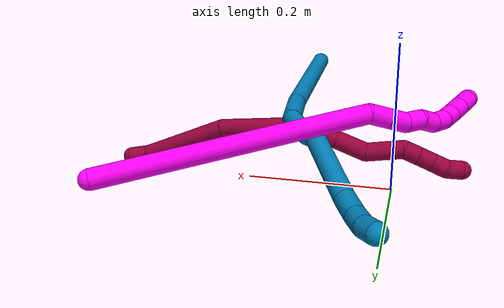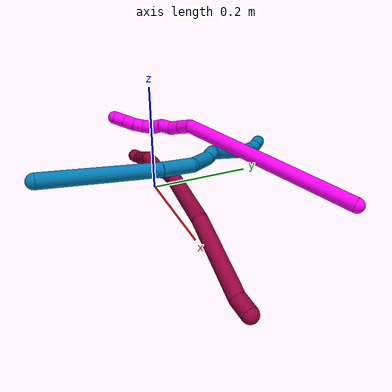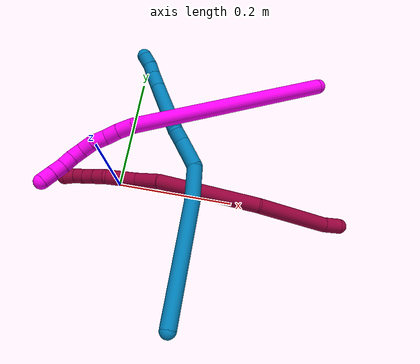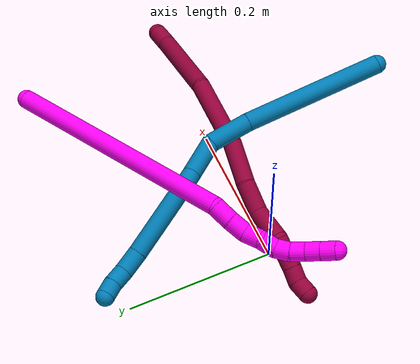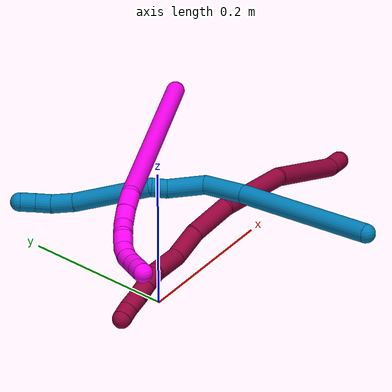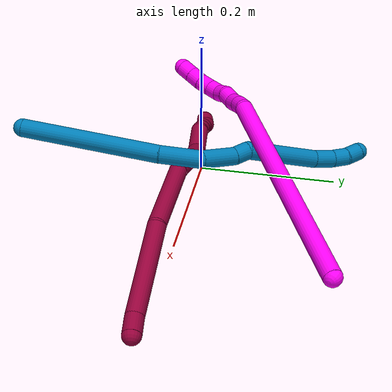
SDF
<sdf version="1.7">
 <world name="default">
  <model name="8">
   <static>0</static>
   <link name="8">
    <collision name="collision-cylinder-e_1_1_4">
     <pose>-0.002851 0.000506 -0.013476 -3.10403 -0.208324 2.78604</pose>
     <geometry><cylinder><radius>0.0125</radius><length>0.027567</length></cylinder></geometry>
     <surface>
      <friction><ode><mu>1.16</mu><mu2>1.16</mu2><slip1>0</slip1><slip2>0</slip2></ode></friction>
      <contact><ode><kp>1e+06</kp><kd>1</kd><max_vel>0</max_vel><min_depth>0.001</min_depth></ode></contact>
     </surface>
    </collision>
    <visual name="visual-cylinder-e_1_1_4">
     <pose>-0.002851 0.000506 -0.013476 -3.10403 -0.208324 2.78604</pose>
     <geometry><cylinder><radius>0.0125</radius><length>0.027567</length></cylinder></geometry>
     <material><ambient>0.584314 0 0.227451 1</ambient></material>
    </visual>
    <collision name="collision-cylinder-e_2_4_5">
     <pose>-0.00776 -0.007884 -0.090834 3.00322 -0.031911 -0.452633</pose>
     <geometry><cylinder><radius>0.0125</radius><length>0.129062</length></cylinder></geometry>
     <surface>
      <friction><ode><mu>1.16</mu><mu2>1.16</mu2><slip1>0</slip1><slip2>0</slip2></ode></friction>
      <contact><ode><kp>1e+06</kp><kd>1</kd><max_vel>0</max_vel><min_depth>0.001</min_depth></ode></contact>
     </surface>
    </collision>
    <visual name="visual-cylinder-e_2_4_5">
     <pose>-0.00776 -0.007884 -0.090834 3.00322 -0.031911 -0.452633</pose>
     <geometry><cylinder><radius>0.0125</radius><length>0.129062</length></cylinder></geometry>
     <material><ambient>0.584314 0 0.227451 1</ambient></material>
    </visual>
    <collision name="collision-cylinder-e_3_5_6">
     <pose>-0.026946 -0.021815 -0.206843 3.04532 -0.316061 -2.55445</pose>
     <geometry><cylinder><radius>0.0125</radius><length>0.110199</length></cylinder></geometry>
     <surface>
      <friction><ode><mu>1.16</mu><mu2>1.16</mu2><slip1>0</slip1><slip2>0</slip2></ode></friction>
      <contact><ode><kp>1e+06</kp><kd>1</kd><max_vel>0</max_vel><min_depth>0.001</min_depth></ode></contact>
     </surface>
    </collision>
    <visual name="visual-cylinder-e_3_5_6">
     <pose>-0.026946 -0.021815 -0.206843 3.04532 -0.316061 -2.55445</pose>
     <geometry><cylinder><radius>0.0125</radius><length>0.110199</length></cylinder></geometry>
     <material><ambient>0.584314 0 0.227451 1</ambient></material>
    </visual>
    <collision name="collision-cylinder-e_4_6_7">
     <pose>-0.061828 -0.02912 -0.282216 3.04418 -0.650029 -2.85426</pose>
     <geometry><cylinder><radius>0.0125</radius><length>0.058678</length></cylinder></geometry>
     <surface>
      <friction><ode><mu>1.16</mu><mu2>1.16</mu2><slip1>0</slip1><slip2>0</slip2></ode></friction>
      <contact><ode><kp>1e+06</kp><kd>1</kd><max_vel>0</max_vel><min_depth>0.001</min_depth></ode></contact>
     </surface>
    </collision>
    <visual name="visual-cylinder-e_4_6_7">
     <pose>-0.061828 -0.02912 -0.282216 3.04418 -0.650029 -2.85426</pose>
     <geometry><cylinder><radius>0.0125</radius><length>0.058678</length></cylinder></geometry>
     <material><ambient>0.584314 0 0.227451 1</ambient></material>
    </visual>
    <collision name="collision-cylinder-e_5_7_8">
     <pose>-0.093988 -0.029586 -0.320971 -3.02567 -0.745073 2.84677</pose>
     <geometry><cylinder><radius>0.0125</radius><length>0.042487</length></cylinder></geometry>
     <surface>
      <friction><ode><mu>1.16</mu><mu2>1.16</mu2><slip1>0</slip1><slip2>0</slip2></ode></friction>
      <contact><ode><kp>1e+06</kp><kd>1</kd><max_vel>0</max_vel><min_depth>0.001</min_depth></ode></contact>
     </surface>
    </collision>
    <visual name="visual-cylinder-e_5_7_8">
     <pose>-0.093988 -0.029586 -0.320971 -3.02567 -0.745073 2.84677</pose>
     <geometry><cylinder><radius>0.0125</radius><length>0.042487</length></cylinder></geometry>
     <material><ambient>0.584314 0 0.227451 1</ambient></material>
    </visual>
    <collision name="collision-cylinder-e_6_8_9">
     <pose>-0.114902 -0.026985 -0.360812 -3.10892 -0.261303 2.89422</pose>
     <geometry><cylinder><radius>0.0125</radius><length>0.050398</length></cylinder></geometry>
     <surface>
      <friction><ode><mu>1.16</mu><mu2>1.16</mu2><slip1>0</slip1><slip2>0</slip2></ode></friction>
      <contact><ode><kp>1e+06</kp><kd>1</kd><max_vel>0</max_vel><min_depth>0.001</min_depth></ode></contact>
     </surface>
    </collision>
    <visual name="visual-cylinder-e_6_8_9">
     <pose>-0.114902 -0.026985 -0.360812 -3.10892 -0.261303 2.89422</pose>
     <geometry><cylinder><radius>0.0125</radius><length>0.050398</length></cylinder></geometry>
     <material><ambient>0.584314 0 0.227451 1</ambient></material>
    </visual>
    <collision name="collision-cylinder-e_7_9_10">
     <pose>-0.128426 -0.025081 -0.392345 -2.98884 -0.766334 2.76637</pose>
     <geometry><cylinder><radius>0.0125</radius><length>0.02023</length></cylinder></geometry>
     <surface>
      <friction><ode><mu>1.16</mu><mu2>1.16</mu2><slip1>0</slip1><slip2>0</slip2></ode></friction>
      <contact><ode><kp>1e+06</kp><kd>1</kd><max_vel>0</max_vel><min_depth>0.001</min_depth></ode></contact>
     </surface>
    </collision>
    <visual name="visual-cylinder-e_7_9_10">
     <pose>-0.128426 -0.025081 -0.392345 -2.98884 -0.766334 2.76637</pose>
     <geometry><cylinder><radius>0.0125</radius><length>0.02023</length></cylinder></geometry>
     <material><ambient>0.584314 0 0.227451 1</ambient></material>
    </visual>
    <collision name="collision-cylinder-e_8_10_11">
     <pose>-0.142714 -0.022544 -0.406905 -2.94993 -0.770382 2.67602</pose>
     <geometry><cylinder><radius>0.0125</radius><length>0.020885</length></cylinder></geometry>
     <surface>
      <friction><ode><mu>1.16</mu><mu2>1.16</mu2><slip1>0</slip1><slip2>0</slip2></ode></friction>
      <contact><ode><kp>1e+06</kp><kd>1</kd><max_vel>0</max_vel><min_depth>0.001</min_depth></ode></contact>
     </surface>
    </collision>
    <visual name="visual-cylinder-e_8_10_11">
     <pose>-0.142714 -0.022544 -0.406905 -2.94993 -0.770382 2.67602</pose>
     <geometry><cylinder><radius>0.0125</radius><length>0.020885</length></cylinder></geometry>
     <material><ambient>0.584314 0 0.227451 1</ambient></material>
    </visual>
    <collision name="collision-cylinder-e_9_11_12">
     <pose>-0.157209 -0.020532 -0.421494 -3.06091 -0.783103 2.94668</pose>
     <geometry><cylinder><radius>0.0125</radius><length>0.020476</length></cylinder></geometry>
     <surface>
      <friction><ode><mu>1.16</mu><mu2>1.16</mu2><slip1>0</slip1><slip2>0</slip2></ode></friction>
      <contact><ode><kp>1e+06</kp><kd>1</kd><max_vel>0</max_vel><min_depth>0.001</min_depth></ode></contact>
     </surface>
    </collision>
    <visual name="visual-cylinder-e_9_11_12">
     <pose>-0.157209 -0.020532 -0.421494 -3.06091 -0.783103 2.94668</pose>
     <geometry><cylinder><radius>0.0125</radius><length>0.020476</length></cylinder></geometry>
     <material><ambient>0.584314 0 0.227451 1</ambient></material>
    </visual>
    <collision name="collision-cylinder-e_10_12_2">
     <pose>-0.168428 -0.017482 -0.437565 -2.86953 -0.410816 1.97909</pose>
     <geometry><cylinder><radius>0.0125</radius><length>0.020017</length></cylinder></geometry>
     <surface>
      <friction><ode><mu>1.16</mu><mu2>1.16</mu2><slip1>0</slip1><slip2>0</slip2></ode></friction>
      <contact><ode><kp>1e+06</kp><kd>1</kd><max_vel>0</max_vel><min_depth>0.001</min_depth></ode></contact>
     </surface>
    </collision>
    <visual name="visual-cylinder-e_10_12_2">
     <pose>-0.168428 -0.017482 -0.437565 -2.86953 -0.410816 1.97909</pose>
     <geometry><cylinder><radius>0.0125</radius><length>0.020017</length></cylinder></geometry>
     <material><ambient>0.584314 0 0.227451 1</ambient></material>
    </visual>
    <collision name="collision-sphere-2">
     <pose>-0.172425 -0.015016 -0.446403 0 -0 0</pose>
     <geometry><sphere><radius>0.0125</radius></sphere></geometry>
     <surface>
      <friction><ode><mu>1.16</mu><mu2>1.16</mu2><slip1>0</slip1><slip2>0</slip2></ode></friction>
      <contact><ode><kp>1e+06</kp><kd>1</kd><max_vel>0</max_vel><min_depth>0.001</min_depth></ode></contact>
     </surface>
    </collision>
    <visual name="visual-sphere-2">
     <pose>-0.172425 -0.015016 -0.446403 0 -0 0</pose>
     <geometry><sphere><radius>0.0125</radius></sphere></geometry>
     <material><ambient>0.584314 0 0.227451 1</ambient></material>
    </visual>
    <collision name="collision-sphere-12">
     <pose>-0.164432 -0.019947 -0.428726 0 -0 0</pose>
     <geometry><sphere><radius>0.0125</radius></sphere></geometry>
     <surface>
      <friction><ode><mu>1.16</mu><mu2>1.16</mu2><slip1>0</slip1><slip2>0</slip2></ode></friction>
      <contact><ode><kp>1e+06</kp><kd>1</kd><max_vel>0</max_vel><min_depth>0.001</min_depth></ode></contact>
     </surface>
    </collision>
    <visual name="visual-sphere-12">
     <pose>-0.164432 -0.019947 -0.428726 0 -0 0</pose>
     <geometry><sphere><radius>0.0125</radius></sphere></geometry>
     <material><ambient>0.584314 0 0.227451 1</ambient></material>
    </visual>
    <collision name="collision-sphere-11">
     <pose>-0.149986 -0.021117 -0.414261 0 -0 0</pose>
     <geometry><sphere><radius>0.0125</radius></sphere></geometry>
     <surface>
      <friction><ode><mu>1.16</mu><mu2>1.16</mu2><slip1>0</slip1><slip2>0</slip2></ode></friction>
      <contact><ode><kp>1e+06</kp><kd>1</kd><max_vel>0</max_vel><min_depth>0.001</min_depth></ode></contact>
     </surface>
    </collision>
    <visual name="visual-sphere-11">
     <pose>-0.149986 -0.021117 -0.414261 0 -0 0</pose>
     <geometry><sphere><radius>0.0125</radius></sphere></geometry>
     <material><ambient>0.584314 0 0.227451 1</ambient></material>
    </visual>
    <collision name="collision-sphere-10">
     <pose>-0.135441 -0.023972 -0.399548 0 -0 0</pose>
     <geometry><sphere><radius>0.0125</radius></sphere></geometry>
     <surface>
      <friction><ode><mu>1.16</mu><mu2>1.16</mu2><slip1>0</slip1><slip2>0</slip2></ode></friction>
      <contact><ode><kp>1e+06</kp><kd>1</kd><max_vel>0</max_vel><min_depth>0.001</min_depth></ode></contact>
     </surface>
    </collision>
    <visual name="visual-sphere-10">
     <pose>-0.135441 -0.023972 -0.399548 0 -0 0</pose>
     <geometry><sphere><radius>0.0125</radius></sphere></geometry>
     <material><ambient>0.584314 0 0.227451 1</ambient></material>
    </visual>
    <collision name="collision-sphere-9">
     <pose>-0.121412 -0.02619 -0.385143 0 -0 0</pose>
     <geometry><sphere><radius>0.0125</radius></sphere></geometry>
     <surface>
      <friction><ode><mu>1.16</mu><mu2>1.16</mu2><slip1>0</slip1><slip2>0</slip2></ode></friction>
      <contact><ode><kp>1e+06</kp><kd>1</kd><max_vel>0</max_vel><min_depth>0.001</min_depth></ode></contact>
     </surface>
    </collision>
    <visual name="visual-sphere-9">
     <pose>-0.121412 -0.02619 -0.385143 0 -0 0</pose>
     <geometry><sphere><radius>0.0125</radius></sphere></geometry>
     <material><ambient>0.584314 0 0.227451 1</ambient></material>
    </visual>
    <collision name="collision-sphere-4">
     <pose>-0.005701 0.001013 -0.026952 0 -0 0</pose>
     <geometry><sphere><radius>0.0125</radius></sphere></geometry>
     <surface>
      <friction><ode><mu>1.16</mu><mu2>1.16</mu2><slip1>0</slip1><slip2>0</slip2></ode></friction>
      <contact><ode><kp>1e+06</kp><kd>1</kd><max_vel>0</max_vel><min_depth>0.001</min_depth></ode></contact>
     </surface>
    </collision>
    <visual name="visual-sphere-4">
     <pose>-0.005701 0.001013 -0.026952 0 -0 0</pose>
     <geometry><sphere><radius>0.0125</radius></sphere></geometry>
     <material><ambient>0.584314 0 0.227451 1</ambient></material>
    </visual>
    <collision name="collision-sphere-1">
     <geometry><sphere><radius>0.0125</radius></sphere></geometry>
     <surface>
      <friction><ode><mu>1.16</mu><mu2>1.16</mu2><slip1>0</slip1><slip2>0</slip2></ode></friction>
      <contact><ode><kp>1e+06</kp><kd>1</kd><max_vel>0</max_vel><min_depth>0.001</min_depth></ode></contact>
     </surface>
    </collision>
    <visual name="visual-sphere-1">
     <geometry><sphere><radius>0.0125</radius></sphere></geometry>
     <material><ambient>0.584314 0 0.227451 1</ambient></material>
    </visual>
    <collision name="collision-sphere-8">
     <pose>-0.108392 -0.02778 -0.336481 0 -0 0</pose>
     <geometry><sphere><radius>0.0125</radius></sphere></geometry>
     <surface>
      <friction><ode><mu>1.16</mu><mu2>1.16</mu2><slip1>0</slip1><slip2>0</slip2></ode></friction>
      <contact><ode><kp>1e+06</kp><kd>1</kd><max_vel>0</max_vel><min_depth>0.001</min_depth></ode></contact>
     </surface>
    </collision>
    <visual name="visual-sphere-8">
     <pose>-0.108392 -0.02778 -0.336481 0 -0 0</pose>
     <geometry><sphere><radius>0.0125</radius></sphere></geometry>
     <material><ambient>0.584314 0 0.227451 1</ambient></material>
    </visual>
    <collision name="collision-sphere-5">
     <pose>-0.009819 -0.01678 -0.154716 0 -0 0</pose>
     <geometry><sphere><radius>0.0125</radius></sphere></geometry>
     <surface>
      <friction><ode><mu>1.16</mu><mu2>1.16</mu2><slip1>0</slip1><slip2>0</slip2></ode></friction>
      <contact><ode><kp>1e+06</kp><kd>1</kd><max_vel>0</max_vel><min_depth>0.001</min_depth></ode></contact>
     </surface>
    </collision>
    <visual name="visual-sphere-5">
     <pose>-0.009819 -0.01678 -0.154716 0 -0 0</pose>
     <geometry><sphere><radius>0.0125</radius></sphere></geometry>
     <material><ambient>0.584314 0 0.227451 1</ambient></material>
    </visual>
    <collision name="collision-sphere-6">
     <pose>-0.044072 -0.026849 -0.258971 0 -0 0</pose>
     <geometry><sphere><radius>0.0125</radius></sphere></geometry>
     <surface>
      <friction><ode><mu>1.16</mu><mu2>1.16</mu2><slip1>0</slip1><slip2>0</slip2></ode></friction>
      <contact><ode><kp>1e+06</kp><kd>1</kd><max_vel>0</max_vel><min_depth>0.001</min_depth></ode></contact>
     </surface>
    </collision>
    <visual name="visual-sphere-6">
     <pose>-0.044072 -0.026849 -0.258971 0 -0 0</pose>
     <geometry><sphere><radius>0.0125</radius></sphere></geometry>
     <material><ambient>0.584314 0 0.227451 1</ambient></material>
    </visual>
    <collision name="collision-sphere-7">
     <pose>-0.079584 -0.031392 -0.305461 0 -0 0</pose>
     <geometry><sphere><radius>0.0125</radius></sphere></geometry>
     <surface>
      <friction><ode><mu>1.16</mu><mu2>1.16</mu2><slip1>0</slip1><slip2>0</slip2></ode></friction>
      <contact><ode><kp>1e+06</kp><kd>1</kd><max_vel>0</max_vel><min_depth>0.001</min_depth></ode></contact>
     </surface>
    </collision>
    <visual name="visual-sphere-7">
     <pose>-0.079584 -0.031392 -0.305461 0 -0 0</pose>
     <geometry><sphere><radius>0.0125</radius></sphere></geometry>
     <material><ambient>0.584314 0 0.227451 1</ambient></material>
    </visual>
    <inertial>
     <pose>-0.059261 -0.018964 -0.234189 0 -0 0</pose>
     <mass>0.5</mass>
     <inertia>
      <ixx>-0.000116</ixx>
      <ixy>0</ixy>
      <ixz>0</ixz>
      <iyy>-0.000158</iyy>
      <iyz>0</iyz>
      <izz>6.7e-05</izz>
     </inertia>
    </inertial>
   </link>
   <pose>0.388454 -0.008702 0.011494 -2.49768 -1.0763 -0.559371</pose>
  </model>
  <model name="9">
   <static>0</static>
   <link name="9">
    <collision name="collision-cylinder-e_1_1_4">
     <pose>-0.028355 0.080385 -0.043008 -2.06207 -0.301538 0.496695</pose>
     <geometry><cylinder><radius>0.0125</radius><length>0.190949</length></cylinder></geometry>
     <surface>
      <friction><ode><mu>1.16</mu><mu2>1.16</mu2><slip1>0</slip1><slip2>0</slip2></ode></friction>
      <contact><ode><kp>1e+06</kp><kd>1</kd><max_vel>0</max_vel><min_depth>0.001</min_depth></ode></contact>
     </surface>
    </collision>
    <visual name="visual-cylinder-e_1_1_4">
     <pose>-0.028355 0.080385 -0.043008 -2.06207 -0.301538 0.496695</pose>
     <geometry><cylinder><radius>0.0125</radius><length>0.190949</length></cylinder></geometry>
     <material><ambient>0 0.490196 0.709804 1</ambient></material>
    </visual>
    <collision name="collision-cylinder-e_2_4_5">
     <pose>-0.062692 0.186268 -0.097662 -1.99923 -0.210239 0.325459</pose>
     <geometry><cylinder><radius>0.0125</radius><length>0.057327</length></cylinder></geometry>
     <surface>
      <friction><ode><mu>1.16</mu><mu2>1.16</mu2><slip1>0</slip1><slip2>0</slip2></ode></friction>
      <contact><ode><kp>1e+06</kp><kd>1</kd><max_vel>0</max_vel><min_depth>0.001</min_depth></ode></contact>
     </surface>
    </collision>
    <visual name="visual-cylinder-e_2_4_5">
     <pose>-0.062692 0.186268 -0.097662 -1.99923 -0.210239 0.325459</pose>
     <geometry><cylinder><radius>0.0125</radius><length>0.057327</length></cylinder></geometry>
     <material><ambient>0 0.490196 0.709804 1</ambient></material>
    </visual>
    <collision name="collision-cylinder-e_3_5_6">
     <pose>-0.064921 0.236584 -0.111127 -1.64394 0.149671 -0.160992</pose>
     <geometry><cylinder><radius>0.0125</radius><length>0.050331</length></cylinder></geometry>
     <surface>
      <friction><ode><mu>1.16</mu><mu2>1.16</mu2><slip1>0</slip1><slip2>0</slip2></ode></friction>
      <contact><ode><kp>1e+06</kp><kd>1</kd><max_vel>0</max_vel><min_depth>0.001</min_depth></ode></contact>
     </surface>
    </collision>
    <visual name="visual-cylinder-e_3_5_6">
     <pose>-0.064921 0.236584 -0.111127 -1.64394 0.149671 -0.160992</pose>
     <geometry><cylinder><radius>0.0125</radius><length>0.050331</length></cylinder></geometry>
     <material><ambient>0 0.490196 0.709804 1</ambient></material>
    </visual>
    <collision name="collision-cylinder-e_4_6_7">
     <pose>-0.057145 0.271069 -0.115464 -1.82567 0.382856 -0.491392</pose>
     <geometry><cylinder><radius>0.0125</radius><length>0.02154</length></cylinder></geometry>
     <surface>
      <friction><ode><mu>1.16</mu><mu2>1.16</mu2><slip1>0</slip1><slip2>0</slip2></ode></friction>
      <contact><ode><kp>1e+06</kp><kd>1</kd><max_vel>0</max_vel><min_depth>0.001</min_depth></ode></contact>
     </surface>
    </collision>
    <visual name="visual-cylinder-e_4_6_7">
     <pose>-0.057145 0.271069 -0.115464 -1.82567 0.382856 -0.491392</pose>
     <geometry><cylinder><radius>0.0125</radius><length>0.02154</length></cylinder></geometry>
     <material><ambient>0 0.490196 0.709804 1</ambient></material>
    </visual>
    <collision name="collision-cylinder-e_5_7_8">
     <pose>-0.055579 0.333762 -0.118394 -1.57856 -0.046297 0.046658</pose>
     <geometry><cylinder><radius>0.0125</radius><length>0.106168</length></cylinder></geometry>
     <surface>
      <friction><ode><mu>1.16</mu><mu2>1.16</mu2><slip1>0</slip1><slip2>0</slip2></ode></friction>
      <contact><ode><kp>1e+06</kp><kd>1</kd><max_vel>0</max_vel><min_depth>0.001</min_depth></ode></contact>
     </surface>
    </collision>
    <visual name="visual-cylinder-e_5_7_8">
     <pose>-0.055579 0.333762 -0.118394 -1.57856 -0.046297 0.046658</pose>
     <geometry><cylinder><radius>0.0125</radius><length>0.106168</length></cylinder></geometry>
     <material><ambient>0 0.490196 0.709804 1</ambient></material>
    </visual>
    <collision name="collision-cylinder-e_6_8_9">
     <pose>-0.057333 0.401844 -0.120531 -1.68486 0.046322 -0.051929</pose>
     <geometry><cylinder><radius>0.0125</radius><length>0.030342</length></cylinder></geometry>
     <surface>
      <friction><ode><mu>1.16</mu><mu2>1.16</mu2><slip1>0</slip1><slip2>0</slip2></ode></friction>
      <contact><ode><kp>1e+06</kp><kd>1</kd><max_vel>0</max_vel><min_depth>0.001</min_depth></ode></contact>
     </surface>
    </collision>
    <visual name="visual-cylinder-e_6_8_9">
     <pose>-0.057333 0.401844 -0.120531 -1.68486 0.046322 -0.051929</pose>
     <geometry><cylinder><radius>0.0125</radius><length>0.030342</length></cylinder></geometry>
     <material><ambient>0 0.490196 0.709804 1</ambient></material>
    </visual>
    <collision name="collision-cylinder-e_7_9_10">
     <pose>-0.055148 0.427592 -0.124973 -1.81961 0.133596 -0.171619</pose>
     <geometry><cylinder><radius>0.0125</radius><length>0.022263</length></cylinder></geometry>
     <surface>
      <friction><ode><mu>1.16</mu><mu2>1.16</mu2><slip1>0</slip1><slip2>0</slip2></ode></friction>
      <contact><ode><kp>1e+06</kp><kd>1</kd><max_vel>0</max_vel><min_depth>0.001</min_depth></ode></contact>
     </surface>
    </collision>
    <visual name="visual-cylinder-e_7_9_10">
     <pose>-0.055148 0.427592 -0.124973 -1.81961 0.133596 -0.171619</pose>
     <geometry><cylinder><radius>0.0125</radius><length>0.022263</length></cylinder></geometry>
     <material><ambient>0 0.490196 0.709804 1</ambient></material>
    </visual>
    <collision name="collision-cylinder-e_8_10_2">
     <pose>-0.049748 0.447854 -0.129735 -1.78134 0.38074 -0.467754</pose>
     <geometry><cylinder><radius>0.0125</radius><length>0.021081</length></cylinder></geometry>
     <surface>
      <friction><ode><mu>1.16</mu><mu2>1.16</mu2><slip1>0</slip1><slip2>0</slip2></ode></friction>
      <contact><ode><kp>1e+06</kp><kd>1</kd><max_vel>0</max_vel><min_depth>0.001</min_depth></ode></contact>
     </surface>
    </collision>
    <visual name="visual-cylinder-e_8_10_2">
     <pose>-0.049748 0.447854 -0.129735 -1.78134 0.38074 -0.467754</pose>
     <geometry><cylinder><radius>0.0125</radius><length>0.021081</length></cylinder></geometry>
     <material><ambient>0 0.490196 0.709804 1</ambient></material>
    </visual>
    <collision name="collision-sphere-2">
     <pose>-0.045831 0.457424 -0.13178 0 -0 0</pose>
     <geometry><sphere><radius>0.0125</radius></sphere></geometry>
     <surface>
      <friction><ode><mu>1.16</mu><mu2>1.16</mu2><slip1>0</slip1><slip2>0</slip2></ode></friction>
      <contact><ode><kp>1e+06</kp><kd>1</kd><max_vel>0</max_vel><min_depth>0.001</min_depth></ode></contact>
     </surface>
    </collision>
    <visual name="visual-sphere-2">
     <pose>-0.045831 0.457424 -0.13178 0 -0 0</pose>
     <geometry><sphere><radius>0.0125</radius></sphere></geometry>
     <material><ambient>0 0.490196 0.709804 1</ambient></material>
    </visual>
    <collision name="collision-sphere-10">
     <pose>-0.053665 0.438285 -0.127689 0 -0 0</pose>
     <geometry><sphere><radius>0.0125</radius></sphere></geometry>
     <surface>
      <friction><ode><mu>1.16</mu><mu2>1.16</mu2><slip1>0</slip1><slip2>0</slip2></ode></friction>
      <contact><ode><kp>1e+06</kp><kd>1</kd><max_vel>0</max_vel><min_depth>0.001</min_depth></ode></contact>
     </surface>
    </collision>
    <visual name="visual-sphere-10">
     <pose>-0.053665 0.438285 -0.127689 0 -0 0</pose>
     <geometry><sphere><radius>0.0125</radius></sphere></geometry>
     <material><ambient>0 0.490196 0.709804 1</ambient></material>
    </visual>
    <collision name="collision-sphere-9">
     <pose>-0.05663 0.4169 -0.122256 0 -0 0</pose>
     <geometry><sphere><radius>0.0125</radius></sphere></geometry>
     <surface>
      <friction><ode><mu>1.16</mu><mu2>1.16</mu2><slip1>0</slip1><slip2>0</slip2></ode></friction>
      <contact><ode><kp>1e+06</kp><kd>1</kd><max_vel>0</max_vel><min_depth>0.001</min_depth></ode></contact>
     </surface>
    </collision>
    <visual name="visual-sphere-9">
     <pose>-0.05663 0.4169 -0.122256 0 -0 0</pose>
     <geometry><sphere><radius>0.0125</radius></sphere></geometry>
     <material><ambient>0 0.490196 0.709804 1</ambient></material>
    </visual>
    <collision name="collision-sphere-4">
     <pose>-0.05671 0.160769 -0.086016 0 -0 0</pose>
     <geometry><sphere><radius>0.0125</radius></sphere></geometry>
     <surface>
      <friction><ode><mu>1.16</mu><mu2>1.16</mu2><slip1>0</slip1><slip2>0</slip2></ode></friction>
      <contact><ode><kp>1e+06</kp><kd>1</kd><max_vel>0</max_vel><min_depth>0.001</min_depth></ode></contact>
     </surface>
    </collision>
    <visual name="visual-sphere-4">
     <pose>-0.05671 0.160769 -0.086016 0 -0 0</pose>
     <geometry><sphere><radius>0.0125</radius></sphere></geometry>
     <material><ambient>0 0.490196 0.709804 1</ambient></material>
    </visual>
    <collision name="collision-sphere-1">
     <geometry><sphere><radius>0.0125</radius></sphere></geometry>
     <surface>
      <friction><ode><mu>1.16</mu><mu2>1.16</mu2><slip1>0</slip1><slip2>0</slip2></ode></friction>
      <contact><ode><kp>1e+06</kp><kd>1</kd><max_vel>0</max_vel><min_depth>0.001</min_depth></ode></contact>
     </surface>
    </collision>
    <visual name="visual-sphere-1">
     <geometry><sphere><radius>0.0125</radius></sphere></geometry>
     <material><ambient>0 0.490196 0.709804 1</ambient></material>
    </visual>
    <collision name="collision-sphere-8">
     <pose>-0.058035 0.386787 -0.118806 0 -0 0</pose>
     <geometry><sphere><radius>0.0125</radius></sphere></geometry>
     <surface>
      <friction><ode><mu>1.16</mu><mu2>1.16</mu2><slip1>0</slip1><slip2>0</slip2></ode></friction>
      <contact><ode><kp>1e+06</kp><kd>1</kd><max_vel>0</max_vel><min_depth>0.001</min_depth></ode></contact>
     </surface>
    </collision>
    <visual name="visual-sphere-8">
     <pose>-0.058035 0.386787 -0.118806 0 -0 0</pose>
     <geometry><sphere><radius>0.0125</radius></sphere></geometry>
     <material><ambient>0 0.490196 0.709804 1</ambient></material>
    </visual>
    <collision name="collision-sphere-5">
     <pose>-0.068674 0.211767 -0.109308 0 -0 0</pose>
     <geometry><sphere><radius>0.0125</radius></sphere></geometry>
     <surface>
      <friction><ode><mu>1.16</mu><mu2>1.16</mu2><slip1>0</slip1><slip2>0</slip2></ode></friction>
      <contact><ode><kp>1e+06</kp><kd>1</kd><max_vel>0</max_vel><min_depth>0.001</min_depth></ode></contact>
     </surface>
    </collision>
    <visual name="visual-sphere-5">
     <pose>-0.068674 0.211767 -0.109308 0 -0 0</pose>
     <geometry><sphere><radius>0.0125</radius></sphere></geometry>
     <material><ambient>0 0.490196 0.709804 1</ambient></material>
    </visual>
    <collision name="collision-sphere-6">
     <pose>-0.061169 0.261401 -0.112945 0 -0 0</pose>
     <geometry><sphere><radius>0.0125</radius></sphere></geometry>
     <surface>
      <friction><ode><mu>1.16</mu><mu2>1.16</mu2><slip1>0</slip1><slip2>0</slip2></ode></friction>
      <contact><ode><kp>1e+06</kp><kd>1</kd><max_vel>0</max_vel><min_depth>0.001</min_depth></ode></contact>
     </surface>
    </collision>
    <visual name="visual-sphere-6">
     <pose>-0.061169 0.261401 -0.112945 0 -0 0</pose>
     <geometry><sphere><radius>0.0125</radius></sphere></geometry>
     <material><ambient>0 0.490196 0.709804 1</ambient></material>
    </visual>
    <collision name="collision-sphere-7">
     <pose>-0.053122 0.280737 -0.117983 0 -0 0</pose>
     <geometry><sphere><radius>0.0125</radius></sphere></geometry>
     <surface>
      <friction><ode><mu>1.16</mu><mu2>1.16</mu2><slip1>0</slip1><slip2>0</slip2></ode></friction>
      <contact><ode><kp>1e+06</kp><kd>1</kd><max_vel>0</max_vel><min_depth>0.001</min_depth></ode></contact>
     </surface>
    </collision>
    <visual name="visual-sphere-7">
     <pose>-0.053122 0.280737 -0.117983 0 -0 0</pose>
     <geometry><sphere><radius>0.0125</radius></sphere></geometry>
     <material><ambient>0 0.490196 0.709804 1</ambient></material>
    </visual>
    <inertial>
     <pose>-0.046847 0.220724 -0.08727 0 -0 0</pose>
     <mass>0.5</mass>
     <inertia>
      <ixx>0.000904</ixx>
      <ixy>0</ixy>
      <ixz>0</ixz>
      <iyy>0.000131</iyy>
      <iyz>0</iyz>
      <izz>-0.000466</izz>
     </inertia>
    </inertial>
   </link>
   <pose>0.140041 -0.221324 0.12619 -2.75384 -0.672181 -2.83444</pose>
  </model>
  <model name="10">
   <static>0</static>
   <link name="10">
    <collision name="collision-cylinder-e_1_1_4">
     <pose>-0.108243 -0.048026 0.112547 0.403329 -0.724235 -0.154587</pose>
     <geometry><cylinder><radius>0.0125</radius><length>0.326741</length></cylinder></geometry>
     <surface>
      <friction><ode><mu>1.16</mu><mu2>1.16</mu2><slip1>0</slip1><slip2>0</slip2></ode></friction>
      <contact><ode><kp>1e+06</kp><kd>1</kd><max_vel>0</max_vel><min_depth>0.001</min_depth></ode></contact>
     </surface>
    </collision>
    <visual name="visual-cylinder-e_1_1_4">
     <pose>-0.108243 -0.048026 0.112547 0.403329 -0.724235 -0.154587</pose>
     <geometry><cylinder><radius>0.0125</radius><length>0.326741</length></cylinder></geometry>
     <material><ambient>1 0 0.964706 1</ambient></material>
    </visual>
    <collision name="collision-cylinder-e_2_4_5">
     <pose>-0.225814 -0.094116 0.233784 -0.219245 -0.80865 0.094123</pose>
     <geometry><cylinder><radius>0.0125</radius><length>0.025788</length></cylinder></geometry>
     <surface>
      <friction><ode><mu>1.16</mu><mu2>1.16</mu2><slip1>0</slip1><slip2>0</slip2></ode></friction>
      <contact><ode><kp>1e+06</kp><kd>1</kd><max_vel>0</max_vel><min_depth>0.001</min_depth></ode></contact>
     </surface>
    </collision>
    <visual name="visual-cylinder-e_2_4_5">
     <pose>-0.225814 -0.094116 0.233784 -0.219245 -0.80865 0.094123</pose>
     <geometry><cylinder><radius>0.0125</radius><length>0.025788</length></cylinder></geometry>
     <material><ambient>1 0 0.964706 1</ambient></material>
    </visual>
    <collision name="collision-cylinder-e_3_5_6">
     <pose>-0.244649 -0.090362 0.249728 -0.245481 -0.90434 0.119698</pose>
     <geometry><cylinder><radius>0.0125</radius><length>0.024194</length></cylinder></geometry>
     <surface>
      <friction><ode><mu>1.16</mu><mu2>1.16</mu2><slip1>0</slip1><slip2>0</slip2></ode></friction>
      <contact><ode><kp>1e+06</kp><kd>1</kd><max_vel>0</max_vel><min_depth>0.001</min_depth></ode></contact>
     </surface>
    </collision>
    <visual name="visual-cylinder-e_3_5_6">
     <pose>-0.244649 -0.090362 0.249728 -0.245481 -0.90434 0.119698</pose>
     <geometry><cylinder><radius>0.0125</radius><length>0.024194</length></cylinder></geometry>
     <material><ambient>1 0 0.964706 1</ambient></material>
    </visual>
    <collision name="collision-cylinder-e_4_6_7">
     <pose>-0.262991 -0.091235 0.263247 0.405521 -0.91344 -0.201354</pose>
     <geometry><cylinder><radius>0.0125</radius><length>0.022317</length></cylinder></geometry>
     <surface>
      <friction><ode><mu>1.16</mu><mu2>1.16</mu2><slip1>0</slip1><slip2>0</slip2></ode></friction>
      <contact><ode><kp>1e+06</kp><kd>1</kd><max_vel>0</max_vel><min_depth>0.001</min_depth></ode></contact>
     </surface>
    </collision>
    <visual name="visual-cylinder-e_4_6_7">
     <pose>-0.262991 -0.091235 0.263247 0.405521 -0.91344 -0.201354</pose>
     <geometry><cylinder><radius>0.0125</radius><length>0.022317</length></cylinder></geometry>
     <material><ambient>1 0 0.964706 1</ambient></material>
    </visual>
    <collision name="collision-cylinder-e_5_7_8">
     <pose>-0.280808 -0.092398 0.274289 -0.309375 -1.06176 0.182587</pose>
     <geometry><cylinder><radius>0.0125</radius><length>0.020578</length></cylinder></geometry>
     <surface>
      <friction><ode><mu>1.16</mu><mu2>1.16</mu2><slip1>0</slip1><slip2>0</slip2></ode></friction>
      <contact><ode><kp>1e+06</kp><kd>1</kd><max_vel>0</max_vel><min_depth>0.001</min_depth></ode></contact>
     </surface>
    </collision>
    <visual name="visual-cylinder-e_5_7_8">
     <pose>-0.280808 -0.092398 0.274289 -0.309375 -1.06176 0.182587</pose>
     <geometry><cylinder><radius>0.0125</radius><length>0.020578</length></cylinder></geometry>
     <material><ambient>1 0 0.964706 1</ambient></material>
    </visual>
    <collision name="collision-cylinder-e_6_8_9">
     <pose>-0.298936 -0.093247 0.282676 0.581806 -1.12919 -0.374805</pose>
     <geometry><cylinder><radius>0.0125</radius><length>0.020228</length></cylinder></geometry>
     <surface>
      <friction><ode><mu>1.16</mu><mu2>1.16</mu2><slip1>0</slip1><slip2>0</slip2></ode></friction>
      <contact><ode><kp>1e+06</kp><kd>1</kd><max_vel>0</max_vel><min_depth>0.001</min_depth></ode></contact>
     </surface>
    </collision>
    <visual name="visual-cylinder-e_6_8_9">
     <pose>-0.298936 -0.093247 0.282676 0.581806 -1.12919 -0.374805</pose>
     <geometry><cylinder><radius>0.0125</radius><length>0.020228</length></cylinder></geometry>
     <material><ambient>1 0 0.964706 1</ambient></material>
    </visual>
    <collision name="collision-cylinder-e_7_9_10">
     <pose>-0.316979 -0.099835 0.288083 1.16791 -1.0955 -0.766387</pose>
     <geometry><cylinder><radius>0.0125</radius><length>0.020017</length></cylinder></geometry>
     <surface>
      <friction><ode><mu>1.16</mu><mu2>1.16</mu2><slip1>0</slip1><slip2>0</slip2></ode></friction>
      <contact><ode><kp>1e+06</kp><kd>1</kd><max_vel>0</max_vel><min_depth>0.001</min_depth></ode></contact>
     </surface>
    </collision>
    <visual name="visual-cylinder-e_7_9_10">
     <pose>-0.316979 -0.099835 0.288083 1.16791 -1.0955 -0.766387</pose>
     <geometry><cylinder><radius>0.0125</radius><length>0.020017</length></cylinder></geometry>
     <material><ambient>1 0 0.964706 1</ambient></material>
    </visual>
    <collision name="collision-cylinder-e_8_10_11">
     <pose>-0.334108 -0.109214 0.292361 1.12282 -0.962512 -0.634656</pose>
     <geometry><cylinder><radius>0.0125</radius><length>0.020056</length></cylinder></geometry>
     <surface>
      <friction><ode><mu>1.16</mu><mu2>1.16</mu2><slip1>0</slip1><slip2>0</slip2></ode></friction>
      <contact><ode><kp>1e+06</kp><kd>1</kd><max_vel>0</max_vel><min_depth>0.001</min_depth></ode></contact>
     </surface>
    </collision>
    <visual name="visual-cylinder-e_8_10_11">
     <pose>-0.334108 -0.109214 0.292361 1.12282 -0.962512 -0.634656</pose>
     <geometry><cylinder><radius>0.0125</radius><length>0.020056</length></cylinder></geometry>
     <material><ambient>1 0 0.964706 1</ambient></material>
    </visual>
    <collision name="collision-cylinder-e_9_11_2">
     <pose>-0.350555 -0.119629 0.297233 1.14357 -0.958813 -0.645638</pose>
     <geometry><cylinder><radius>0.0125</radius><length>0.02008</length></cylinder></geometry>
     <surface>
      <friction><ode><mu>1.16</mu><mu2>1.16</mu2><slip1>0</slip1><slip2>0</slip2></ode></friction>
      <contact><ode><kp>1e+06</kp><kd>1</kd><max_vel>0</max_vel><min_depth>0.001</min_depth></ode></contact>
     </surface>
    </collision>
    <visual name="visual-cylinder-e_9_11_2">
     <pose>-0.350555 -0.119629 0.297233 1.14357 -0.958813 -0.645638</pose>
     <geometry><cylinder><radius>0.0125</radius><length>0.02008</length></cylinder></geometry>
     <material><ambient>1 0 0.964706 1</ambient></material>
    </visual>
    <collision name="collision-sphere-2">
     <pose>-0.358773 -0.124878 0.299623 0 -0 0</pose>
     <geometry><sphere><radius>0.0125</radius></sphere></geometry>
     <surface>
      <friction><ode><mu>1.16</mu><mu2>1.16</mu2><slip1>0</slip1><slip2>0</slip2></ode></friction>
      <contact><ode><kp>1e+06</kp><kd>1</kd><max_vel>0</max_vel><min_depth>0.001</min_depth></ode></contact>
     </surface>
    </collision>
    <visual name="visual-sphere-2">
     <pose>-0.358773 -0.124878 0.299623 0 -0 0</pose>
     <geometry><sphere><radius>0.0125</radius></sphere></geometry>
     <material><ambient>1 0 0.964706 1</ambient></material>
    </visual>
    <collision name="collision-sphere-11">
     <pose>-0.342337 -0.114379 0.294843 0 -0 0</pose>
     <geometry><sphere><radius>0.0125</radius></sphere></geometry>
     <surface>
      <friction><ode><mu>1.16</mu><mu2>1.16</mu2><slip1>0</slip1><slip2>0</slip2></ode></friction>
      <contact><ode><kp>1e+06</kp><kd>1</kd><max_vel>0</max_vel><min_depth>0.001</min_depth></ode></contact>
     </surface>
    </collision>
    <visual name="visual-sphere-11">
     <pose>-0.342337 -0.114379 0.294843 0 -0 0</pose>
     <geometry><sphere><radius>0.0125</radius></sphere></geometry>
     <material><ambient>1 0 0.964706 1</ambient></material>
    </visual>
    <collision name="collision-sphere-10">
     <pose>-0.325879 -0.104049 0.289879 0 -0 0</pose>
     <geometry><sphere><radius>0.0125</radius></sphere></geometry>
     <surface>
      <friction><ode><mu>1.16</mu><mu2>1.16</mu2><slip1>0</slip1><slip2>0</slip2></ode></friction>
      <contact><ode><kp>1e+06</kp><kd>1</kd><max_vel>0</max_vel><min_depth>0.001</min_depth></ode></contact>
     </surface>
    </collision>
    <visual name="visual-sphere-10">
     <pose>-0.325879 -0.104049 0.289879 0 -0 0</pose>
     <geometry><sphere><radius>0.0125</radius></sphere></geometry>
     <material><ambient>1 0 0.964706 1</ambient></material>
    </visual>
    <collision name="collision-sphere-9">
     <pose>-0.30808 -0.095622 0.286288 0 -0 0</pose>
     <geometry><sphere><radius>0.0125</radius></sphere></geometry>
     <surface>
      <friction><ode><mu>1.16</mu><mu2>1.16</mu2><slip1>0</slip1><slip2>0</slip2></ode></friction>
      <contact><ode><kp>1e+06</kp><kd>1</kd><max_vel>0</max_vel><min_depth>0.001</min_depth></ode></contact>
     </surface>
    </collision>
    <visual name="visual-sphere-9">
     <pose>-0.30808 -0.095622 0.286288 0 -0 0</pose>
     <geometry><sphere><radius>0.0125</radius></sphere></geometry>
     <material><ambient>1 0 0.964706 1</ambient></material>
    </visual>
    <collision name="collision-sphere-4">
     <pose>-0.216486 -0.096053 0.225094 0 -0 0</pose>
     <geometry><sphere><radius>0.0125</radius></sphere></geometry>
     <surface>
      <friction><ode><mu>1.16</mu><mu2>1.16</mu2><slip1>0</slip1><slip2>0</slip2></ode></friction>
      <contact><ode><kp>1e+06</kp><kd>1</kd><max_vel>0</max_vel><min_depth>0.001</min_depth></ode></contact>
     </surface>
    </collision>
    <visual name="visual-sphere-4">
     <pose>-0.216486 -0.096053 0.225094 0 -0 0</pose>
     <geometry><sphere><radius>0.0125</radius></sphere></geometry>
     <material><ambient>1 0 0.964706 1</ambient></material>
    </visual>
    <collision name="collision-sphere-1">
     <geometry><sphere><radius>0.0125</radius></sphere></geometry>
     <surface>
      <friction><ode><mu>1.16</mu><mu2>1.16</mu2><slip1>0</slip1><slip2>0</slip2></ode></friction>
      <contact><ode><kp>1e+06</kp><kd>1</kd><max_vel>0</max_vel><min_depth>0.001</min_depth></ode></contact>
     </surface>
    </collision>
    <visual name="visual-sphere-1">
     <geometry><sphere><radius>0.0125</radius></sphere></geometry>
     <material><ambient>1 0 0.964706 1</ambient></material>
    </visual>
    <collision name="collision-sphere-8">
     <pose>-0.289793 -0.090871 0.279065 0 -0 0</pose>
     <geometry><sphere><radius>0.0125</radius></sphere></geometry>
     <surface>
      <friction><ode><mu>1.16</mu><mu2>1.16</mu2><slip1>0</slip1><slip2>0</slip2></ode></friction>
      <contact><ode><kp>1e+06</kp><kd>1</kd><max_vel>0</max_vel><min_depth>0.001</min_depth></ode></contact>
     </surface>
    </collision>
    <visual name="visual-sphere-8">
     <pose>-0.289793 -0.090871 0.279065 0 -0 0</pose>
     <geometry><sphere><radius>0.0125</radius></sphere></geometry>
     <material><ambient>1 0 0.964706 1</ambient></material>
    </visual>
    <collision name="collision-sphere-5">
     <pose>-0.235141 -0.09218 0.242474 0 -0 0</pose>
     <geometry><sphere><radius>0.0125</radius></sphere></geometry>
     <surface>
      <friction><ode><mu>1.16</mu><mu2>1.16</mu2><slip1>0</slip1><slip2>0</slip2></ode></friction>
      <contact><ode><kp>1e+06</kp><kd>1</kd><max_vel>0</max_vel><min_depth>0.001</min_depth></ode></contact>
     </surface>
    </collision>
    <visual name="visual-sphere-5">
     <pose>-0.235141 -0.09218 0.242474 0 -0 0</pose>
     <geometry><sphere><radius>0.0125</radius></sphere></geometry>
     <material><ambient>1 0 0.964706 1</ambient></material>
    </visual>
    <collision name="collision-sphere-6">
     <pose>-0.254157 -0.088545 0.256982 0 -0 0</pose>
     <geometry><sphere><radius>0.0125</radius></sphere></geometry>
     <surface>
      <friction><ode><mu>1.16</mu><mu2>1.16</mu2><slip1>0</slip1><slip2>0</slip2></ode></friction>
      <contact><ode><kp>1e+06</kp><kd>1</kd><max_vel>0</max_vel><min_depth>0.001</min_depth></ode></contact>
     </surface>
    </collision>
    <visual name="visual-sphere-6">
     <pose>-0.254157 -0.088545 0.256982 0 -0 0</pose>
     <geometry><sphere><radius>0.0125</radius></sphere></geometry>
     <material><ambient>1 0 0.964706 1</ambient></material>
    </visual>
    <collision name="collision-sphere-7">
     <pose>-0.271824 -0.093925 0.269513 0 -0 0</pose>
     <geometry><sphere><radius>0.0125</radius></sphere></geometry>
     <surface>
      <friction><ode><mu>1.16</mu><mu2>1.16</mu2><slip1>0</slip1><slip2>0</slip2></ode></friction>
      <contact><ode><kp>1e+06</kp><kd>1</kd><max_vel>0</max_vel><min_depth>0.001</min_depth></ode></contact>
     </surface>
    </collision>
    <visual name="visual-sphere-7">
     <pose>-0.271824 -0.093925 0.269513 0 -0 0</pose>
     <geometry><sphere><radius>0.0125</radius></sphere></geometry>
     <material><ambient>1 0 0.964706 1</ambient></material>
    </visual>
    <inertial>
     <pose>-0.169779 -0.06544 0.167361 0 -0 0</pose>
     <mass>0.5</mass>
     <inertia>
      <ixx>0.001802</ixx>
      <ixy>0</ixy>
      <ixz>0</ixz>
      <iyy>0.002435</iyy>
      <iyz>0</iyz>
      <izz>0.002829</izz>
     </inertia>
    </inertial>
   </link>
   <pose>0.314173 0.214867 0.074736 -1.49707 -0.266428 1.21817</pose>
  </model>
 </world>
</sdf>
